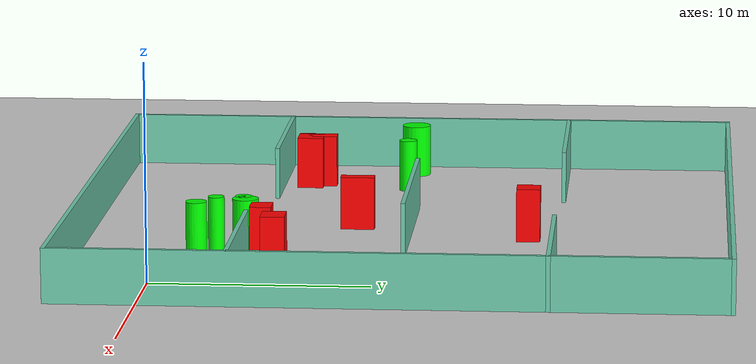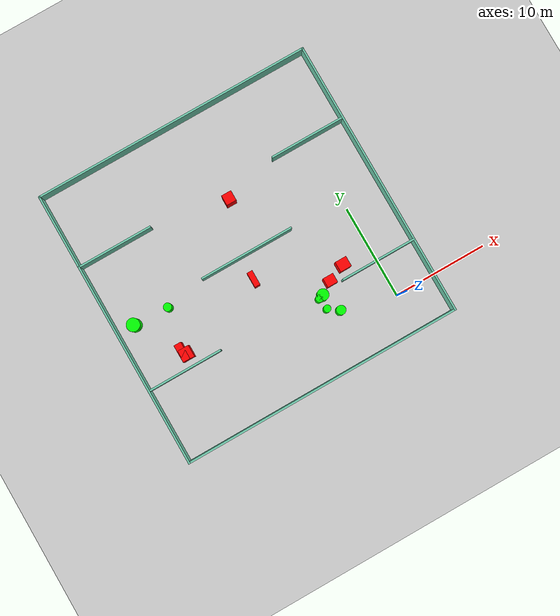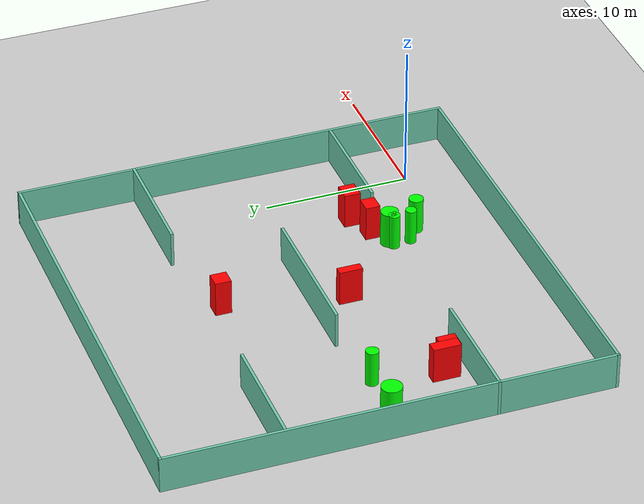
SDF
<sdf version="1.7">
 <world name="default">
  <light name="sun" type="directional">
   <pose>0 0 10 0 -0 0</pose>
   <diffuse>0.8 0.8 0.8 1</diffuse>
   <specular>0.2 0.2 0.2 1</specular>
   <attenuation>
    <range>1000</range>
    <constant>0.9</constant>
    <linear>0.01</linear>
    <quadratic>0.001</quadratic>
   </attenuation>
   <direction>-0.5 0.1 -0.9</direction>
   <spot><inner_angle>0</inner_angle><outer_angle>0</outer_angle><falloff>0</falloff></spot>
  </light>
  <model name="ground_plane">
   <static>1</static>
   <link name="link">
    <collision name="collision">
     <geometry><plane><normal>0 0 1</normal><size>100 100</size></plane></geometry>
     <surface>
      <contact><collide_bitmask>65535</collide_bitmask></contact>
      <friction><ode><mu>100</mu><mu2>50</mu2></ode></friction>
     </surface>
    </collision>
    <visual name="visual">
     <cast_shadows>0</cast_shadows>
     <geometry><plane><normal>0 0 1</normal><size>100 100</size></plane></geometry>
     <material>
      <script><uri>file://media/materials/scripts/gazebo.material</uri><name>Gazebo/Grey</name></script>
     </material>
    </visual>
   </link>
  </model>
  <gravity>0 0 -9.8</gravity>
  <magnetic_field>6e-06 2.3e-05 -4.2e-05</magnetic_field>
  <atmosphere type="adiabatic"/>
  <physics type="ode">
   <max_step_size>0.001</max_step_size>
   <real_time_factor>1</real_time_factor>
   <real_time_update_rate>1000</real_time_update_rate>
  </physics>
  <scene><ambient>0.4 0.4 0.4 1</ambient><background>0.7 0.7 0.7 1</background><shadows>1</shadows></scene>
  <spherical_coordinates>
   <surface_model>EARTH_WGS84</surface_model>
   <latitude_deg>0</latitude_deg>
   <longitude_deg>0</longitude_deg>
   <elevation>0</elevation>
   <heading_deg>0</heading_deg>
  </spherical_coordinates>
  <model name="my_base_walls">
   <link name="Wall_10">
    <collision name="Wall_10_Collision">
     <geometry><box><size>8.2 0.2 2.5</size></box></geometry>
     <pose>0 0 1.25 0 -0 0</pose>
    </collision>
    <visual name="Wall_10_Visual">
     <pose>0 0 1.25 0 -0 0</pose>
     <geometry><box><size>8.2 0.2 2.5</size></box></geometry>
     <material>
      <script><uri>file://media/materials/scripts/gazebo.material</uri><name>Gazebo/Grey</name></script>
      <ambient>0.435294 0.796078 0.67451 1</ambient>
     </material>
     <meta><layer>0</layer></meta>
    </visual>
    <pose>-11 -7 0 0 -0 0</pose>
   </link>
   <link name="Wall_12">
    <collision name="Wall_12_Collision">
     <geometry><box><size>8.2 0.2 2.5</size></box></geometry>
     <pose>0 0 1.25 0 -0 0</pose>
    </collision>
    <visual name="Wall_12_Visual">
     <pose>0 0 1.25 0 -0 0</pose>
     <geometry><box><size>8.2 0.2 2.5</size></box></geometry>
     <material>
      <script><uri>file://media/materials/scripts/gazebo.material</uri><name>Gazebo/Grey</name></script>
      <ambient>0.435294 0.796078 0.67451 1</ambient>
     </material>
     <meta><layer>0</layer></meta>
    </visual>
    <pose>-11 7 0 0 -0 0</pose>
   </link>
   <link name="Wall_14">
    <collision name="Wall_14_Collision">
     <geometry><box><size>8.2 0.2 2.5</size></box></geometry>
     <pose>0 0 1.25 0 -0 0</pose>
    </collision>
    <visual name="Wall_14_Visual">
     <pose>0 0 1.25 0 -0 0</pose>
     <geometry><box><size>8.2 0.2 2.5</size></box></geometry>
     <material>
      <script><uri>file://media/materials/scripts/gazebo.material</uri><name>Gazebo/Grey</name></script>
      <ambient>0.435294 0.796078 0.67451 1</ambient>
     </material>
     <meta><layer>0</layer></meta>
    </visual>
    <pose>11 7 0 0 -0 3.14159</pose>
   </link>
   <link name="Wall_16">
    <collision name="Wall_16_Collision">
     <geometry><box><size>10.2 0.2 2.5</size></box></geometry>
     <pose>0 0 1.25 0 -0 0</pose>
    </collision>
    <visual name="Wall_16_Visual">
     <pose>0 0 1.25 0 -0 0</pose>
     <geometry><box><size>10.2 0.2 2.5</size></box></geometry>
     <material>
      <script><uri>file://media/materials/scripts/gazebo.material</uri><name>Gazebo/Grey</name></script>
      <ambient>0.435294 0.796078 0.67451 1</ambient>
     </material>
     <meta><layer>0</layer></meta>
    </visual>
    <pose>0 0 0 0 -0 3.14159</pose>
   </link>
   <link name="Wall_2">
    <collision name="Wall_2_Collision">
     <geometry><box><size>30.2 0.2 2.5</size></box></geometry>
     <pose>0 0 1.25 0 -0 0</pose>
    </collision>
    <visual name="Wall_2_Visual">
     <pose>0 0 1.25 0 -0 0</pose>
     <geometry><box><size>30.2 0.2 2.5</size></box></geometry>
     <material>
      <script><uri>file://media/materials/scripts/gazebo.material</uri><name>Gazebo/Grey</name></script>
      <ambient>0.435294 0.796078 0.67451 1</ambient>
     </material>
     <meta><layer>0</layer></meta>
    </visual>
    <pose>0 -15 0 0 -0 3.14159</pose>
   </link>
   <link name="Wall_3">
    <collision name="Wall_3_Collision">
     <geometry><box><size>30.2 0.2 2.5</size></box></geometry>
     <pose>0 0 1.25 0 -0 0</pose>
    </collision>
    <visual name="Wall_3_Visual">
     <pose>0 0 1.25 0 -0 0</pose>
     <geometry><box><size>30.2 0.2 2.5</size></box></geometry>
     <material>
      <script><uri>file://media/materials/scripts/gazebo.material</uri><name>Gazebo/Grey</name></script>
      <ambient>0.435294 0.796078 0.67451 1</ambient>
     </material>
     <meta><layer>0</layer></meta>
    </visual>
    <pose>-15 0 0 0 -0 1.5708</pose>
   </link>
   <link name="Wall_4">
    <collision name="Wall_4_Collision">
     <geometry><box><size>30.2 0.2 2.5</size></box></geometry>
     <pose>0 0 1.25 0 -0 0</pose>
    </collision>
    <visual name="Wall_4_Visual">
     <pose>0 0 1.25 0 -0 0</pose>
     <geometry><box><size>30.2 0.2 2.5</size></box></geometry>
     <material>
      <script><uri>file://media/materials/scripts/gazebo.material</uri><name>Gazebo/Grey</name></script>
      <ambient>0.435294 0.796078 0.67451 1</ambient>
     </material>
     <meta><layer>0</layer></meta>
    </visual>
    <pose>0 15 0 0 -0 0</pose>
   </link>
   <link name="Wall_6">
    <collision name="Wall_6_Collision">
     <geometry><box><size>30.2 0.2 2.5</size></box></geometry>
     <pose>0 0 1.25 0 -0 0</pose>
    </collision>
    <visual name="Wall_6_Visual">
     <pose>0 0 1.25 0 -0 0</pose>
     <geometry><box><size>30.2 0.2 2.5</size></box></geometry>
     <material>
      <script><uri>file://media/materials/scripts/gazebo.material</uri><name>Gazebo/Grey</name></script>
      <ambient>0.435294 0.796078 0.67451 1</ambient>
     </material>
     <meta><layer>0</layer></meta>
    </visual>
    <pose>15 0 0 0 -0 1.5708</pose>
   </link>
   <link name="Wall_8">
    <collision name="Wall_8_Collision">
     <geometry><box><size>8.2 0.2 2.5</size></box></geometry>
     <pose>0 0 1.25 0 -0 0</pose>
    </collision>
    <visual name="Wall_8_Visual">
     <pose>0 0 1.25 0 -0 0</pose>
     <geometry><box><size>8.2 0.2 2.5</size></box></geometry>
     <material>
      <script><uri>file://media/materials/scripts/gazebo.material</uri><name>Gazebo/Grey</name></script>
      <ambient>0.435294 0.796078 0.67451 1</ambient>
     </material>
     <meta><layer>0</layer></meta>
    </visual>
    <pose>11 -7 0 0 -0 3.14159</pose>
   </link>
   <static>1</static>
   <pose>-11 11 0 0 -0 0</pose>
  </model>
  <model name="cylinder1">
   <static>1</static>
   <link name="link">
    <inertial>
     <mass>1</mass>
     <inertia><ixx>0.5</ixx><ixy>0</ixy><ixz>0</ixz><iyy>0.5</iyy><iyz>0</iyz><izz>1</izz></inertia>
    </inertial>
    <collision name="collision">
     <geometry><cylinder><radius>0.43453113395921106</radius><length>2.5</length></cylinder></geometry>
    </collision>
    <visual name="visual">
     <geometry><cylinder><radius>0.43453113395921106</radius><length>2.5</length></cylinder></geometry>
     <material>
      <ambient>0 1 0 1</ambient>
      <diffuse>0 1 0 1</diffuse>
      <specular>0.1 0.1 0.1 1</specular>
      <emissive>0 0 0 0</emissive>
     </material>
    </visual>
   </link>
   <pose>-20.36750873750992 10.24320857933855 1.25 0 0 0</pose>
  </model>
  <model name="cylinder2">
   <static>1</static>
   <link name="link">
    <inertial>
     <mass>1</mass>
     <inertia><ixx>0.5</ixx><ixy>0</ixy><ixz>0</ixz><iyy>0.5</iyy><iyz>0</iyz><izz>1</izz></inertia>
    </inertial>
    <collision name="collision">
     <geometry><cylinder><radius>0.4901584979996333</radius><length>2.5</length></cylinder></geometry>
    </collision>
    <visual name="visual">
     <geometry><cylinder><radius>0.4901584979996333</radius><length>2.5</length></cylinder></geometry>
     <material>
      <ambient>0 1 0 1</ambient>
      <diffuse>0 1 0 1</diffuse>
      <specular>0.1 0.1 0.1 1</specular>
      <emissive>0 0 0 0</emissive>
     </material>
    </visual>
   </link>
   <pose>-5.731426176302417 1.5135383461109022 1.25 0 0 0</pose>
  </model>
  <model name="cylinder3">
   <static>1</static>
   <link name="link">
    <inertial>
     <mass>1</mass>
     <inertia><ixx>0.5</ixx><ixy>0</ixy><ixz>0</ixz><iyy>0.5</iyy><iyz>0</iyz><izz>1</izz></inertia>
    </inertial>
    <collision name="collision">
     <geometry><cylinder><radius>0.6060633673052649</radius><length>2.5</length></cylinder></geometry>
    </collision>
    <visual name="visual">
     <geometry><cylinder><radius>0.6060633673052649</radius><length>2.5</length></cylinder></geometry>
     <material>
      <ambient>0 1 0 1</ambient>
      <diffuse>0 1 0 1</diffuse>
      <specular>0.1 0.1 0.1 1</specular>
      <emissive>0 0 0 0</emissive>
     </material>
    </visual>
   </link>
   <pose>-6.530932393811753 3.7022107668080384 1.25 0 0 0</pose>
  </model>
  <model name="cylinder4">
   <static>1</static>
   <link name="link">
    <inertial>
     <mass>1</mass>
     <inertia><ixx>0.5</ixx><ixy>0</ixy><ixz>0</ixz><iyy>0.5</iyy><iyz>0</iyz><izz>1</izz></inertia>
    </inertial>
    <collision name="collision">
     <geometry><cylinder><radius>0.3815876809250218</radius><length>2.5</length></cylinder></geometry>
    </collision>
    <visual name="visual">
     <geometry><cylinder><radius>0.3815876809250218</radius><length>2.5</length></cylinder></geometry>
     <material>
      <ambient>0 1 0 1</ambient>
      <diffuse>0 1 0 1</diffuse>
      <specular>0.1 0.1 0.1 1</specular>
      <emissive>0 0 0 0</emissive>
     </material>
    </visual>
   </link>
   <pose>-6.845658962810337 2.3082305891170005 1.25 0 0 0</pose>
  </model>
  <model name="cylinder5">
   <static>1</static>
   <link name="link">
    <inertial>
     <mass>1</mass>
     <inertia><ixx>0.5</ixx><ixy>0</ixy><ixz>0</ixz><iyy>0.5</iyy><iyz>0</iyz><izz>1</izz></inertia>
    </inertial>
    <collision name="collision">
     <geometry><cylinder><radius>0.6959198778587385</radius><length>2.5</length></cylinder></geometry>
    </collision>
    <visual name="visual">
     <geometry><cylinder><radius>0.6959198778587385</radius><length>2.5</length></cylinder></geometry>
     <material>
      <ambient>0 1 0 1</ambient>
      <diffuse>0 1 0 1</diffuse>
      <specular>0.1 0.1 0.1 1</specular>
      <emissive>0 0 0 0</emissive>
     </material>
    </visual>
   </link>
   <pose>-24.14889393619966 10.410856025150913 1.25 0 0 0</pose>
  </model>
  <model name="cylinder6">
   <static>1</static>
   <link name="link">
    <inertial>
     <mass>1</mass>
     <inertia><ixx>0.5</ixx><ixy>0</ixy><ixz>0</ixz><iyy>0.5</iyy><iyz>0</iyz><izz>1</izz></inertia>
    </inertial>
    <collision name="collision">
     <geometry><cylinder><radius>0.39358094123557796</radius><length>2.5</length></cylinder></geometry>
    </collision>
    <visual name="visual">
     <geometry><cylinder><radius>0.39358094123557796</radius><length>2.5</length></cylinder></geometry>
     <material>
      <ambient>0 1 0 1</ambient>
      <diffuse>0 1 0 1</diffuse>
      <specular>0.1 0.1 0.1 1</specular>
      <emissive>0 0 0 0</emissive>
     </material>
    </visual>
   </link>
   <pose>-7.008764743905742 3.5535246111543826 1.25 0 0 0</pose>
  </model>
  <model name="box1">
   <static>1</static>
   <link name="link">
    <inertial>
     <mass>1</mass>
     <inertia><ixx>0.083</ixx><ixy>0</ixy><ixz>0</ixz><iyy>0.083</iyy><iyz>0</iyz><izz>0.083</izz></inertia>
    </inertial>
    <collision name="collision">
     <geometry><box><size>0.5979378141863465 1.5965174190765556 2.5</size></box></geometry>
    </collision>
    <visual name="visual">
     <geometry><box><size>0.5979378141863465 1.5965174190765556 2.5</size></box></geometry>
     <material>
      <ambient>1 0 0 1</ambient>
      <diffuse>1 0 0 1</diffuse>
      <specular>0.1 0.1 0.1 1</specular>
      <emissive>0 0 0 0</emissive>
     </material>
    </visual>
    <sensor name="my_contact" type="contact">
     <contact><collision>box_collision</collision><topic>__default_topic__</topic></contact>
    </sensor>
   </link>
   <pose>-11.668847031616343 8.46046546680266 1.25 0 0 0</pose>
  </model>
  <model name="box2">
   <static>1</static>
   <link name="link">
    <inertial>
     <mass>1</mass>
     <inertia><ixx>0.083</ixx><ixy>0</ixy><ixz>0</ixz><iyy>0.083</iyy><iyz>0</iyz><izz>0.083</izz></inertia>
    </inertial>
    <collision name="collision">
     <geometry><box><size>1.1949486409242995 1.2668351814399033 2.5</size></box></geometry>
    </collision>
    <visual name="visual">
     <geometry><box><size>1.1949486409242995 1.2668351814399033 2.5</size></box></geometry>
     <material>
      <ambient>1 0 0 1</ambient>
      <diffuse>1 0 0 1</diffuse>
      <specular>0.1 0.1 0.1 1</specular>
      <emissive>0 0 0 0</emissive>
     </material>
    </visual>
    <sensor name="my_contact" type="contact">
     <contact><collision>box_collision</collision><topic>__default_topic__</topic></contact>
    </sensor>
   </link>
   <pose>-21.040807965995935 5.3732739598607395 1.25 0 0 0</pose>
  </model>
  <model name="box3">
   <static>1</static>
   <link name="link">
    <inertial>
     <mass>1</mass>
     <inertia><ixx>0.083</ixx><ixy>0</ixy><ixz>0</ixz><iyy>0.083</iyy><iyz>0</iyz><izz>0.083</izz></inertia>
    </inertial>
    <collision name="collision">
     <geometry><box><size>1.0815103017711742 1.103689404863913 2.5</size></box></geometry>
    </collision>
    <visual name="visual">
     <geometry><box><size>1.0815103017711742 1.103689404863913 2.5</size></box></geometry>
     <material>
      <ambient>1 0 0 1</ambient>
      <diffuse>1 0 0 1</diffuse>
      <specular>0.1 0.1 0.1 1</specular>
      <emissive>0 0 0 0</emissive>
     </material>
    </visual>
    <sensor name="my_contact" type="contact">
     <contact><collision>box_collision</collision><topic>__default_topic__</topic></contact>
    </sensor>
   </link>
   <pose>-9.809022513831522 16.60703506355774 1.25 0 0 0</pose>
  </model>
  <model name="box4">
   <static>1</static>
   <link name="link">
    <inertial>
     <mass>1</mass>
     <inertia><ixx>0.083</ixx><ixy>0</ixy><ixz>0</ixz><iyy>0.083</iyy><iyz>0</iyz><izz>0.083</izz></inertia>
    </inertial>
    <collision name="collision">
     <geometry><box><size>0.774209389424148 1.8731419661904964 2.5</size></box></geometry>
    </collision>
    <visual name="visual">
     <geometry><box><size>0.774209389424148 1.8731419661904964 2.5</size></box></geometry>
     <material>
      <ambient>1 0 0 1</ambient>
      <diffuse>1 0 0 1</diffuse>
      <specular>0.1 0.1 0.1 1</specular>
      <emissive>0 0 0 0</emissive>
     </material>
    </visual>
    <sensor name="my_contact" type="contact">
     <contact><collision>box_collision</collision><topic>__default_topic__</topic></contact>
    </sensor>
   </link>
   <pose>-21.318344764576597 5.708167670769724 1.25 0 0 0</pose>
  </model>
  <model name="box5">
   <static>1</static>
   <link name="link">
    <inertial>
     <mass>1</mass>
     <inertia><ixx>0.083</ixx><ixy>0</ixy><ixz>0</ixz><iyy>0.083</iyy><iyz>0</iyz><izz>0.083</izz></inertia>
    </inertial>
    <collision name="collision">
     <geometry><box><size>1.2295961083637863 1.1091916148081749 2.5</size></box></geometry>
    </collision>
    <visual name="visual">
     <geometry><box><size>1.2295961083637863 1.1091916148081749 2.5</size></box></geometry>
     <material>
      <ambient>1 0 0 1</ambient>
      <diffuse>1 0 0 1</diffuse>
      <specular>0.1 0.1 0.1 1</specular>
      <emissive>0 0 0 0</emissive>
     </material>
    </visual>
    <sensor name="my_contact" type="contact">
     <contact><collision>box_collision</collision><topic>__default_topic__</topic></contact>
    </sensor>
   </link>
   <pose>-3.290934002989694 5.318257738236328 1.25 0 0 0</pose>
  </model>
  <model name="box6">
   <static>1</static>
   <link name="link">
    <inertial>
     <mass>1</mass>
     <inertia><ixx>0.083</ixx><ixy>0</ixy><ixz>0</ixz><iyy>0.083</iyy><iyz>0</iyz><izz>0.083</izz></inertia>
    </inertial>
    <collision name="collision">
     <geometry><box><size>1.1233527219051194 0.9966013096845525 2.5</size></box></geometry>
    </collision>
    <visual name="visual">
     <geometry><box><size>1.1233527219051194 0.9966013096845525 2.5</size></box></geometry>
     <material>
      <ambient>1 0 0 1</ambient>
      <diffuse>1 0 0 1</diffuse>
      <specular>0.1 0.1 0.1 1</specular>
      <emissive>0 0 0 0</emissive>
     </material>
    </visual>
    <sensor name="my_contact" type="contact">
     <contact><collision>box_collision</collision><topic>__default_topic__</topic></contact>
    </sensor>
   </link>
   <pose>-5.193045115735231 4.570381378126493 1.25 0 0 0</pose>
  </model>
 </world>
</sdf>
